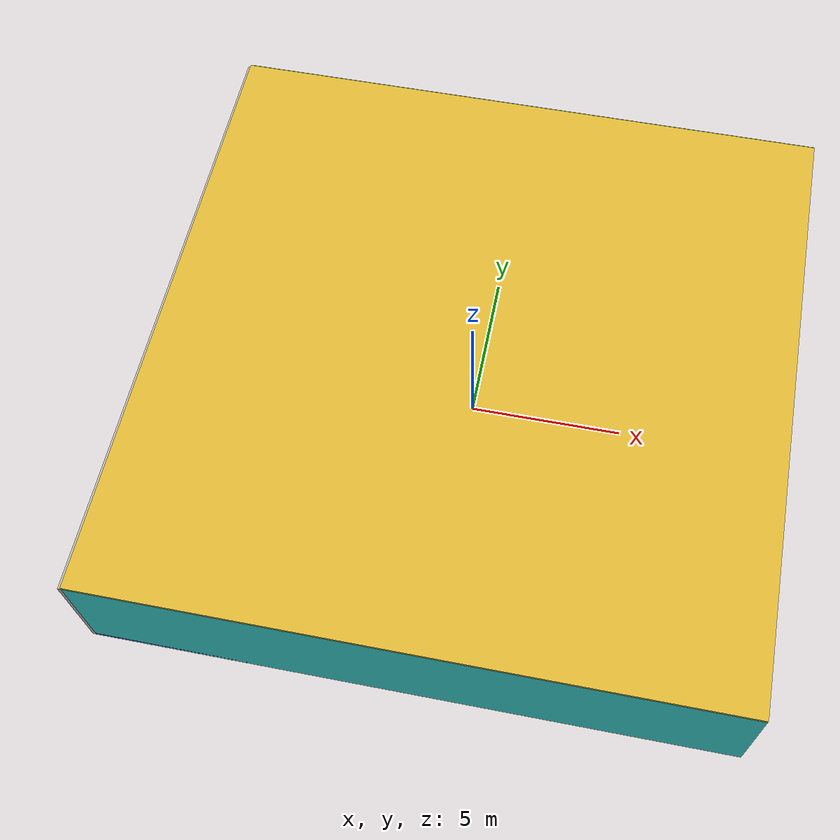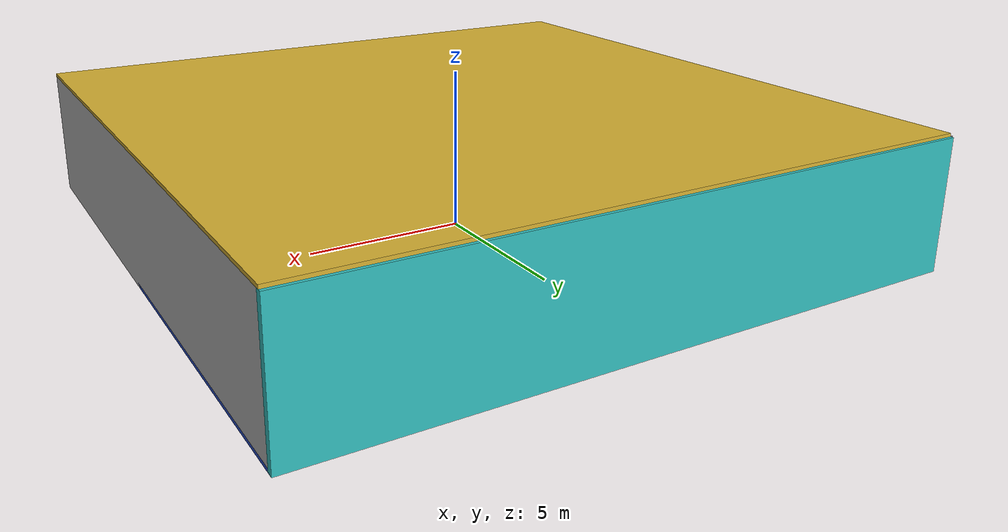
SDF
<sdf version="1.4">
 <world name="default">
  <physics type="ode">
   <max_step_size>0.001</max_step_size>
   <real_time_factor>1</real_time_factor>
   <real_time_update_rate>1000</real_time_update_rate>
   <gravity>0 0 -9.8</gravity>
  </physics>
  <scene><ambient>0.4 0.4 0.4 1</ambient><background>0.7 0.7 0.7 1</background><shadows>1</shadows></scene>
  <model name="Surrounding">
   <static>1</static>
   <link name="Ceiling">
    <collision name="Ceiling_Collision"><geometry><box><size>20 20 0.1</size></box></geometry></collision>
    <visual name="Ceiling_Visual">
     <geometry><box><size>20 20 0.1</size></box></geometry>
     <material>
      <script><uri>file://media/materials/scripts/gazebo.material</uri><name>Gazebo/Gold</name></script>
     </material>
    </visual>
    <pose>0 0 4.05 0 0 0</pose>
   </link>
   <link name="Wall_South">
    <collision name="Wall_South_Collision">
     <geometry><box><size>20 0 4</size></box></geometry>
     <pose>0 0 2 0 -0 0</pose>
    </collision>
    <visual name="Wall_South_Visual">
     <pose>0 0 2 0 -0 0</pose>
     <geometry><box><size>20 0 4</size></box></geometry>
     <material>
      <script><uri>file://media/materials/scripts/gazebo.material</uri><name>Gazebo/Turquoise</name></script>
     </material>
    </visual>
    <velocity_decay><linear>0</linear><angular>0</angular></velocity_decay>
    <pose>0 -10 0 0 -0 0</pose>
   </link>
   <link name="Wall_East">
    <collision name="Wall_21_Collision">
     <geometry><box><size>20 0 4</size></box></geometry>
     <pose>0 0 2 0 -0 0</pose>
    </collision>
    <visual name="Wall_21_Visual">
     <pose>0 0 2 0 -0 0</pose>
     <geometry><box><size>20 0 4</size></box></geometry>
     <material>
      <script><uri>file://media/materials/scripts/gazebo.material</uri><name>Gazebo/Pioneer2Body</name></script>
     </material>
    </visual>
    <velocity_decay><linear>0</linear><angular>0</angular></velocity_decay>
    <pose>10 0 0 0 -0 1.5708</pose>
   </link>
   <link name="Wall_North">
    <collision name="Wall_22_Collision">
     <geometry><box><size>20 0.2 4</size></box></geometry>
     <pose>0 0 2 0 -0 0</pose>
    </collision>
    <visual name="Wall_22_Visual">
     <pose>0 0 2 0 -0 0</pose>
     <geometry><box><size>20 0.2 4</size></box></geometry>
     <material>
      <script><uri>file://media/materials/scripts/gazebo.material</uri><name>Gazebo/TurquoiseGlow</name></script>
     </material>
    </visual>
    <velocity_decay><linear>0</linear><angular>0</angular></velocity_decay>
    <pose>0 10 0 0 -0 0</pose>
   </link>
   <link name="Wall_West">
    <collision name="Wall_23_Collision">
     <geometry><box><size>20 0.2 4</size></box></geometry>
     <pose>0 0 2 0 -0 0</pose>
    </collision>
    <visual name="Wall_23_Visual">
     <pose>0 0 2 0 -0 0</pose>
     <geometry><box><size>20 0.2 4</size></box></geometry>
     <material>
      <script><uri>file://media/materials/scripts/gazebo.material</uri><name>Gazebo/CloudySky</name></script>
     </material>
    </visual>
    <velocity_decay><linear>0</linear><angular>0</angular></velocity_decay>
    <pose>-10 0 0 0 0 -1.5708</pose>
   </link>
   <link name="Ground_link">
    <collision name="collision">
     <pose>0 0 .05 0 -0 0</pose>
     <geometry><box><size>20 20 0.1</size></box></geometry>
    </collision>
    <visual name="visual">
     <pose>0 0 .05 0 -0 0</pose>
     <geometry><box><size>20 20 0.1</size></box></geometry>
     <material>
      <script><uri>file://media/materials/scripts/gazebo.material</uri><name>Gazebo/Blue</name></script>
     </material>
    </visual>
   </link>
   <static>1</static>
  </model>
  <spherical_coordinates>
   <surface_model>EARTH_WGS84</surface_model>
   <latitude_deg>0</latitude_deg>
   <longitude_deg>0</longitude_deg>
   <elevation>0</elevation>
   <heading_deg>0</heading_deg>
  </spherical_coordinates>
  <light name="lightball_0" type="diffuse">
   <diffuse>0.8 0.8 0.8 1</diffuse>
   <specular>0.2 0.2 0.2 1</specular>
   <attenuation>
    <range>100</range>
    <constant>0.7</constant>
    <linear>0.01</linear>
    <quadratic>0.001</quadratic>
   </attenuation>
   <direction>-0.5 0.1 -0.9</direction>
   <pose>-8.91123827668 -5.07132193124 1.02204378254 0 0 0</pose>
  </light>
  <light name="lightball_1" type="diffuse">
   <diffuse>0.8 0.8 0.8 1</diffuse>
   <specular>0.2 0.2 0.2 1</specular>
   <attenuation>
    <range>100</range>
    <constant>0.7</constant>
    <linear>0.01</linear>
    <quadratic>0.001</quadratic>
   </attenuation>
   <direction>-0.5 0.1 -0.9</direction>
   <pose>6.04279530522 5.47845183287 1.33668744844 0 0 0</pose>
  </light>
  <light name="lightball_2" type="diffuse">
   <diffuse>0.8 0.8 0.8 1</diffuse>
   <specular>0.2 0.2 0.2 1</specular>
   <attenuation>
    <range>100</range>
    <constant>0.7</constant>
    <linear>0.01</linear>
    <quadratic>0.001</quadratic>
   </attenuation>
   <direction>-0.5 0.1 -0.9</direction>
   <pose>-5.45655912126 -2.50633871409 1.54160211593 0 0 0</pose>
  </light>
  <light name="lightball_3" type="diffuse">
   <diffuse>0.8 0.8 0.8 1</diffuse>
   <specular>0.2 0.2 0.2 1</specular>
   <attenuation>
    <range>100</range>
    <constant>0.7</constant>
    <linear>0.01</linear>
    <quadratic>0.001</quadratic>
   </attenuation>
   <direction>-0.5 0.1 -0.9</direction>
   <pose>7.06931951821 4.13665210881 0.583463428936 0 0 0</pose>
  </light>
  <light name="lightball_4" type="diffuse">
   <diffuse>0.8 0.8 0.8 1</diffuse>
   <specular>0.2 0.2 0.2 1</specular>
   <attenuation>
    <range>100</range>
    <constant>0.7</constant>
    <linear>0.01</linear>
    <quadratic>0.001</quadratic>
   </attenuation>
   <direction>-0.5 0.1 -0.9</direction>
   <pose>2.24536817733 0.657495451878 1.45570050264 0 0 0</pose>
  </light>
  <light name="lightball_5" type="diffuse">
   <diffuse>0.8 0.8 0.8 1</diffuse>
   <specular>0.2 0.2 0.2 1</specular>
   <attenuation>
    <range>100</range>
    <constant>0.7</constant>
    <linear>0.01</linear>
    <quadratic>0.001</quadratic>
   </attenuation>
   <direction>-0.5 0.1 -0.9</direction>
   <pose>-8.36539424422 -8.4181578783 2.08531688719 0 0 0</pose>
  </light>
  <light name="lightball_6" type="diffuse">
   <diffuse>0.8 0.8 0.8 1</diffuse>
   <specular>0.2 0.2 0.2 1</specular>
   <attenuation>
    <range>100</range>
    <constant>0.7</constant>
    <linear>0.01</linear>
    <quadratic>0.001</quadratic>
   </attenuation>
   <direction>-0.5 0.1 -0.9</direction>
   <pose>1.75085363786 -6.65488978837 3.40254963498 0 0 0</pose>
  </light>
  <light name="lightball_7" type="diffuse">
   <diffuse>0.8 0.8 0.8 1</diffuse>
   <specular>0.2 0.2 0.2 1</specular>
   <attenuation>
    <range>100</range>
    <constant>0.7</constant>
    <linear>0.01</linear>
    <quadratic>0.001</quadratic>
   </attenuation>
   <direction>-0.5 0.1 -0.9</direction>
   <pose>-2.47053068246 7.2701922905 1.3721708596 0 0 0</pose>
  </light>
  <light name="lightball_8" type="diffuse">
   <diffuse>0.8 0.8 0.8 1</diffuse>
   <specular>0.2 0.2 0.2 1</specular>
   <attenuation>
    <range>100</range>
    <constant>0.7</constant>
    <linear>0.01</linear>
    <quadratic>0.001</quadratic>
   </attenuation>
   <direction>-0.5 0.1 -0.9</direction>
   <pose>-8.06789344297 -3.24343420966 1.27708747417 0 0 0</pose>
  </light>
  <light name="lightball_9" type="diffuse">
   <diffuse>0.8 0.8 0.8 1</diffuse>
   <specular>0.2 0.2 0.2 1</specular>
   <attenuation>
    <range>100</range>
    <constant>0.7</constant>
    <linear>0.01</linear>
    <quadratic>0.001</quadratic>
   </attenuation>
   <direction>-0.5 0.1 -0.9</direction>
   <pose>-5.39272134353 -7.33522180454 2.80405750535 0 0 0</pose>
  </light>
  <light name="lightball_10" type="diffuse">
   <diffuse>0.8 0.8 0.8 1</diffuse>
   <specular>0.2 0.2 0.2 1</specular>
   <attenuation>
    <range>100</range>
    <constant>0.7</constant>
    <linear>0.01</linear>
    <quadratic>0.001</quadratic>
   </attenuation>
   <direction>-0.5 0.1 -0.9</direction>
   <pose>-1.45552634276 8.64832576987 3.88154078758 0 0 0</pose>
  </light>
  <light name="lightball_11" type="diffuse">
   <diffuse>0.8 0.8 0.8 1</diffuse>
   <specular>0.2 0.2 0.2 1</specular>
   <attenuation>
    <range>100</range>
    <constant>0.7</constant>
    <linear>0.01</linear>
    <quadratic>0.001</quadratic>
   </attenuation>
   <direction>-0.5 0.1 -0.9</direction>
   <pose>-5.69789034 7.69772478408 3.27103467849 0 0 0</pose>
  </light>
  <light name="lightball_12" type="diffuse">
   <diffuse>0.8 0.8 0.8 1</diffuse>
   <specular>0.2 0.2 0.2 1</specular>
   <attenuation>
    <range>100</range>
    <constant>0.7</constant>
    <linear>0.01</linear>
    <quadratic>0.001</quadratic>
   </attenuation>
   <direction>-0.5 0.1 -0.9</direction>
   <pose>-6.76460291879 -8.12534623743 3.35730806856 0 0 0</pose>
  </light>
  <light name="lightball_13" type="diffuse">
   <diffuse>0.8 0.8 0.8 1</diffuse>
   <specular>0.2 0.2 0.2 1</specular>
   <attenuation>
    <range>100</range>
    <constant>0.7</constant>
    <linear>0.01</linear>
    <quadratic>0.001</quadratic>
   </attenuation>
   <direction>-0.5 0.1 -0.9</direction>
   <pose>-5.65555037223 2.99619908854 1.25564244036 0 0 0</pose>
  </light>
  <include><uri>model://cabinet</uri><pose>-3.67213201948 -6.79432793331 0 0 0 0.873831511793</pose></include>
  <include>
   <uri>model://robocup_3Dsim_goal</uri>
   <pose>-0.320575008023 -0.827773326389 0 0 0 1.11518892955</pose>
  </include>
  <include>
   <uri>model://textured_shapes</uri>
   <pose>0.602627594331 -3.44021685835 0 0 0 2.2752446289</pose>
  </include>
  <include>
   <uri>model://robocup_3Dsim_goal</uri>
   <pose>8.58106684907 -0.639836181818 0 0 0 2.37663728557</pose>
  </include>
 </world>
</sdf>

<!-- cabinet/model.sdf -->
<sdf version="1.5">
  <model name="cabinet">
    <static>true</static>
    <link name="cabinet_bottom_plate">
      <inertial>
        <pose>0 0 -1 0 0 0</pose>
        <inertia>
          <ixx>2.050000</ixx>
          <ixy>0</ixy>
          <ixz>0</ixz>
          <iyy>2.050000</iyy>
          <iyz>0</iyz>
          <izz>2.050000</izz>
        </inertia>
        <mass>25.000000</mass>
      </inertial>
      <collision name="cabinet_bottom_plate_geom">
        <pose>0 0 0.010000 0 0 0</pose>
        <geometry>
          <box>
            <size>0.450000 0.450000 0.020000</size>
          </box>
        </geometry>
      </collision>
      <visual name="cabinet_bottom_plate_geom_visual">
        <pose>0 0 0.010000 0 0 0</pose>
        <geometry>
          <box>
            <size>0.450000 0.450000 0.020000</size>
          </box>
        </geometry>
        <material>
          <script>
            <uri>model://media/materials/scripts/gazebo.material</uri>
            <name>Gazebo/Wood</name>
          </script>
        </material>
      </visual>
      <collision name="cabinet_bottom_plate_geom_cabinet_back_plate">
        <pose>0.235000 0 0.510000 0 0 0</pose>
        <geometry>
          <box>
            <size>0.020000 0.450000 1.020000</size>
          </box>
        </geometry>
      </collision>
      <visual name="cabinet_bottom_plate_geom_cabinet_back_plate_visual">
        <pose>0.235000 0 0.510000 0 0 0</pose>
        <geometry>
          <box>
            <size>0.020000 0.450000 1.020000</size>
          </box>
        </geometry>
        <material>
          <script>
            <uri>model://media/materials/scripts/gazebo.material</uri>
            <name>Gazebo/Wood</name>
          </script>
        </material>
      </visual>
      <collision name="cabinet_bottom_plate_geom_cabinet_left_plate">
        <pose>0 0.235000 0.510000 0 0 0</pose>
        <geometry>
          <box>
            <size>0.450000 0.020000 1.020000</size>
          </box>
        </geometry>
      </collision>
      <visual name="cabinet_bottom_plate_geom_cabinet_left_plate_visual">
        <pose>0 0.235000 0.510000 0 0 0</pose>
        <geometry>
          <box>
            <size>0.450000 0.020000 1.020000</size>
          </box>
        </geometry>
        <material>
          <script>
            <uri>model://media/materials/scripts/gazebo.material</uri>
            <name>Gazebo/Wood</name>
          </script>
        </material>
      </visual>
      <collision name="cabinet_bottom_plate_geom_cabinet_middle_plate">
        <pose>0 0 0.510000 0 0 0</pose>
        <geometry>
          <box>
            <size>0.450000 0.450000 0.020000</size>
          </box>
        </geometry>
      </collision>
      <visual name="cabinet_bottom_plate_geom_cabinet_middle_plate_visual">
        <pose>0 0 0.510000 0 0 0</pose>
        <geometry>
          <box>
            <size>0.450000 0.450000 0.020000</size>
          </box>
        </geometry>
        <material>
          <script>
            <uri>model://media/materials/scripts/gazebo.material</uri>
            <name>Gazebo/Wood</name>
          </script>
        </material>
      </visual>
      <collision name="cabinet_bottom_plate_geom_cabinet_right_plate">
        <pose>0 -0.235000 0.510000 0 0 0</pose>
        <geometry>
          <box>
            <size>0.450000 0.020000 1.020000</size>
          </box>
        </geometry>
      </collision>
      <visual name="cabinet_bottom_plate_geom_cabinet_right_plate_visual">
        <pose>0 -0.235000 0.510000 0 0 0</pose>
        <geometry>
          <box>
            <size>0.450000 0.020000 1.020000</size>
          </box>
        </geometry>
        <material>
          <script>
            <uri>model://media/materials/scripts/gazebo.material</uri>
            <name>Gazebo/Wood</name>
          </script>
        </material>
      </visual>
      <collision name="cabinet_bottom_plate_geom_cabinet_top_plate">
        <pose>0 0 1.010000 0 0 0</pose>
        <geometry>
          <box>
            <size>0.450000 0.450000 0.020000</size>
          </box>
        </geometry>
      </collision>
      <visual name="cabinet_bottom_plate_geom_cabinet_top_plate_visual">
        <pose>0 0 1.010000 0 0 0</pose>
        <geometry>
          <box>
            <size>0.450000 0.450000 0.020000</size>
          </box>
        </geometry>
        <material>
          <script>
            <uri>model://media/materials/scripts/gazebo.material</uri>
            <name>Gazebo/Wood</name>
          </script>
        </material>
      </visual>
    </link>
  </model>
</sdf>

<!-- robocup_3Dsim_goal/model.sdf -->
<sdf version="1.5">
  <model name="robocup_3d_goal">
    <static>true</static>
    <link name="left_post">
      <pose>0 1.05 0.45 0 0 0</pose>
      <collision name="collision">
        <geometry>
          <cylinder>
            <radius>0.05</radius>
            <length>0.9</length>
          </cylinder>
        </geometry>
      </collision>
      <visual name="visual">
        <geometry>
          <cylinder>
            <radius>0.05</radius>
            <length>0.9</length>
          </cylinder>
        </geometry>
        <material>
          <script>
            <uri>file://media/materials/scripts/gazebo.material</uri>
            <name>Gazebo/ZincYellow</name>
          </script>
        </material>
      </visual>
    </link>
    <link name="left_support_horiz_lower">
      <pose>0.30 1.05 0.01 0 0 0</pose>
      <collision name="collision">
        <geometry>
          <box>
            <size>0.50 0.02 0.02</size>
          </box>
        </geometry>
      </collision>
      <visual name="visual">
        <geometry>
          <box>
            <size>0.50 0.02 0.02</size>
          </box>
        </geometry>
        <material>
          <script>
            <uri>file://media/materials/scripts/gazebo.material</uri>
            <name>Gazebo/White</name>
          </script>
        </material>
      </visual>
    </link>
    <link name="left_support_horiz_upper">
      <pose>0.30 1.05 0.79 0 0 0</pose>
      <collision name="collision">
        <geometry>
          <box>
            <size>0.50 0.02 0.02</size>
          </box>
        </geometry>
      </collision>
      <visual name="visual">
        <geometry>
          <box>
            <size>0.50 0.02 0.02</size>
          </box>
        </geometry>
        <material>
          <script>
            <uri>file://media/materials/scripts/gazebo.material</uri>
            <name>Gazebo/White</name>
          </script>
        </material>
      </visual>
    </link>
    <link name="left_support_vertical">
      <pose>0.56 1.05 0.4 0 1.5708 0</pose>
      <collision name="collision">
        <geometry>
          <box>
            <size>0.80 0.02 0.02</size>
          </box>
        </geometry>
      </collision>
      <visual name="visual">
        <geometry>
          <box>
            <size>0.80 0.02 0.02</size>
          </box>
        </geometry>
        <material>
          <script>
            <uri>file://media/materials/scripts/gazebo.material</uri>
            <name>Gazebo/White</name>
          </script>
        </material>
      </visual>
    </link>
    <link name="right_support_horiz_lower">
      <pose>0.30 -1.05 0.01 0 0 0</pose>
      <collision name="collision">
        <geometry>
          <box>
            <size>0.50 0.02 0.02</size>
          </box>
        </geometry>
      </collision>
      <visual name="visual">
        <geometry>
          <box>
            <size>0.50 0.02 0.02</size>
          </box>
        </geometry>
        <material>
          <script>
            <uri>file://media/materials/scripts/gazebo.material</uri>
            <name>Gazebo/White</name>
          </script>
        </material>
      </visual>
    </link>
    <link name="right_support_horiz_upper">
      <pose>0.30 -1.05 0.79 0 0 0</pose>
      <collision name="collision">
        <geometry>
          <box>
            <size>0.50 0.02 0.02</size>
          </box>
        </geometry>
      </collision>
      <visual name="visual">
        <geometry>
          <box>
            <size>0.50 0.02 0.02</size>
          </box>
        </geometry>
        <material>
          <script>
            <uri>file://media/materials/scripts/gazebo.material</uri>
            <name>Gazebo/White</name>
          </script>
        </material>
      </visual>
    </link>
    <link name="right_support_vertical">
      <pose>0.56 -1.05 0.4 0 1.5708 0</pose>
      <collision name="collision">
        <geometry>
          <box>
            <size>0.80 0.02 0.02</size>
          </box>
        </geometry>
      </collision>
      <visual name="visual">
        <geometry>
          <box>
            <size>0.80 0.02 0.02</size>
          </box>
        </geometry>
        <material>
          <script>
            <uri>file://media/materials/scripts/gazebo.material</uri>
            <name>Gazebo/White</name>
          </script>
        </material>
      </visual>
    </link>
    <link name="center_support_horiz_lower">
      <pose>0.56 0 0.01 0 1.5708 0</pose>
      <collision name="collision">
        <geometry>
          <box>
            <size>0.02 2.08 0.02</size>
          </box>
        </geometry>
      </collision>
      <visual name="visual">
        <geometry>
          <box>
            <size>0.02 2.08 0.02</size>
          </box>
        </geometry>
        <material>
          <script>
            <uri>file://media/materials/scripts/gazebo.material</uri>
            <name>Gazebo/White</name>
          </script>
        </material>
      </visual>
    </link>
    <link name="center_support_horiz_upper">
      <pose>0.56 0 0.79 0 1.5708 0</pose>
      <collision name="collision">
        <geometry>
          <box>
            <size>0.02 2.08 0.02</size>
          </box>
        </geometry>
      </collision>
      <visual name="visual">
        <geometry>
          <box>
            <size>0.02 2.08 0.02</size>
          </box>
        </geometry>
        <material>
          <script>
            <uri>file://media/materials/scripts/gazebo.material</uri>
            <name>Gazebo/White</name>
          </script>
        </material>
      </visual>
    </link>
    <link name="right_post">
      <pose>0 -1.05 0.45 0 0 0</pose>
      <collision name="collision">
        <geometry>
          <cylinder>
            <radius>0.05</radius>
            <length>0.9</length>
          </cylinder>
        </geometry>
      </collision>
      <visual name="visual">
        <geometry>
          <cylinder>
            <radius>0.05</radius>
            <length>0.9</length>
          </cylinder>
        </geometry>
        <material>
          <script>
            <uri>file://media/materials/scripts/gazebo.material</uri>
            <name>Gazebo/ZincYellow</name>
          </script>
        </material>
      </visual>
    </link>
    <link name="crossbar">
      <pose>0 0 0.85 1.57 1.57 0</pose>
      <collision name="collision">
        <geometry>
          <cylinder>
            <radius>0.05</radius>
            <length>2.0</length>
          </cylinder>
        </geometry>
      </collision>
      <visual name="visual">
        <geometry>
          <cylinder>
            <radius>0.05</radius>
            <length>2.0</length>
          </cylinder>
        </geometry>
        <material>
          <script>
            <uri>file://media/materials/scripts/gazebo.material</uri>
            <name>Gazebo/ZincYellow</name>
          </script>
        </material>
      </visual>
    </link>
    <link name="center_net">
      <pose>0.56 0 0.40 0 0 0</pose>
      <collision name="collision">
        <geometry>
          <box>
            <size>0.01 2.1 0.80</size>
          </box>
        </geometry>
      </collision>
      <visual name="visual">
        <geometry>
          <box>
            <size>0.01 2.1 0.80</size>
          </box>
        </geometry>
        <material>
          <script>
            <uri>model://../model_source/models/robocup09_spl_field/materials/scripts/</uri>
            <uri>model://../model_source/models/robocup09_spl_field/materials/textures/</uri>
            <name>RoboCup/Net</name>
          </script>
        </material>
      </visual>
    </link>
    <link name="left_net">
      <pose>0.30 1.05 0.40 0 0 0</pose>
      <collision name="collision">
        <geometry>
          <box>
            <size>0.50 0.01 0.76</size>
          </box>
        </geometry>
      </collision>
      <visual name="visual">
        <geometry>
          <box>
            <size>0.50 0.01 0.76</size>
          </box>
        </geometry>
        <material>
          <script>
            <uri>model://../model_source/models/robocup09_spl_field/materials/scripts/</uri>
            <uri>model://../model_source/models/robocup09_spl_field/materials/textures/</uri>
            <name>RoboCup/Net</name>
          </script>
        </material>
      </visual>
    </link>
    <link name="right_net">
      <pose>0.30 -1.05 0.40 0 0 0</pose>
      <collision name="collision">
        <geometry>
          <box>
            <size>0.50 0.01 0.76</size>
          </box>
        </geometry>
      </collision>
      <visual name="visual">
        <geometry>
          <box>
            <size>0.50 0.01 0.76</size>
          </box>
        </geometry>
        <material>
          <script>
            <uri>model://../model_source/models/robocup09_spl_field/materials/scripts/</uri>
            <uri>model://../model_source/models/robocup09_spl_field/materials/textures/</uri>
            <name>RoboCup/Net</name>
          </script>
        </material>
      </visual>
    </link>
  </model>
</sdf>

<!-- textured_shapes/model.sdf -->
<sdf version="1.6">
  <model name="textured_shapes">
    <pose>0 0 0.5 0 0 0</pose>
    <link name="box">
      <pose>0 -1.5 0 0 0 0</pose>
      <collision name="collision">
        <geometry>
          <box>
            <size>1 1 1</size>
          </box>
        </geometry>
      </collision>
      <visual name="visual">
        <geometry>
          <box>
            <size>1 1 1</size>
          </box>
        </geometry>
        <material>
          <script>
            <uri>model://../model_source/models/textured_shapes/materials/scripts</uri>
            <uri>model://../model_source/models/textured_shapes/materials/textures</uri>
            <name>TexturedShape/Squares</name>
          </script>
        </material>
      </visual>
    </link>
    <link name="sphere">
      <collision name="collision">
        <geometry>
          <sphere>
            <radius>0.5</radius>
          </sphere>
        </geometry>
      </collision>
      <visual name="visual">
        <geometry>
          <sphere>
            <radius>0.5</radius>
          </sphere>
        </geometry>
        <material>
          <script>
            <uri>model://../model_source/models/textured_shapes/materials/scripts</uri>
            <uri>model://../model_source/models/textured_shapes/materials/textures</uri>
            <name>TexturedShape/Squares</name>
          </script>
        </material>
      </visual>
    </link>
    <link name="cylinder">
      <pose>0 1.5 0 0 0 0</pose>
      <collision name="collision">
        <geometry>
          <cylinder>
            <radius>0.5</radius>
            <length>1</length>
          </cylinder>
        </geometry>
      </collision>
      <visual name="visual">
        <geometry>
          <cylinder>
            <radius>0.5</radius>
            <length>1</length>
          </cylinder>
        </geometry>
        <material>
          <script>
            <uri>model://../model_source/models/textured_shapes/materials/scripts</uri>
            <uri>model://../model_source/models/textured_shapes/materials/textures</uri>
            <name>TexturedShape/Squares</name>
          </script>
        </material>
      </visual>
    </link>
  </model>
</sdf>
